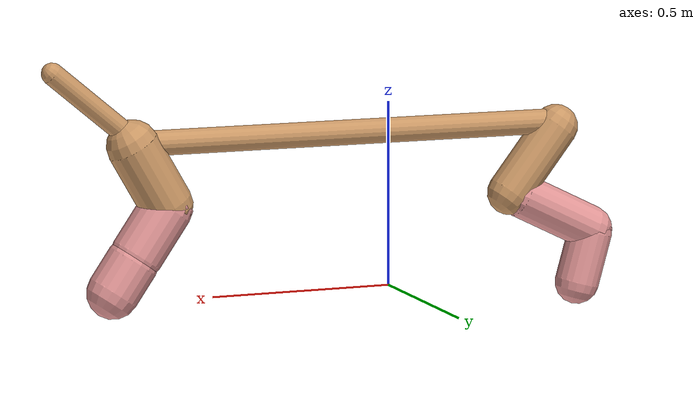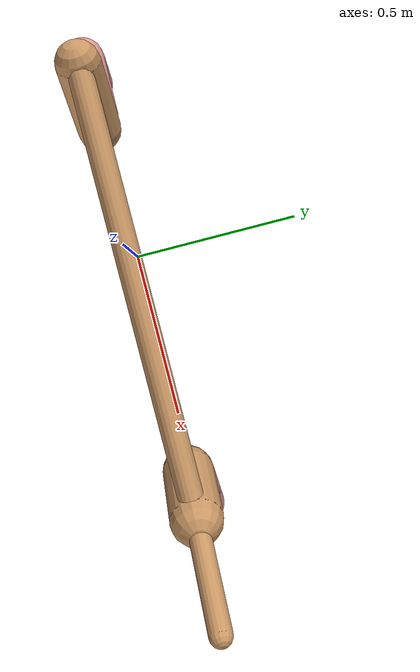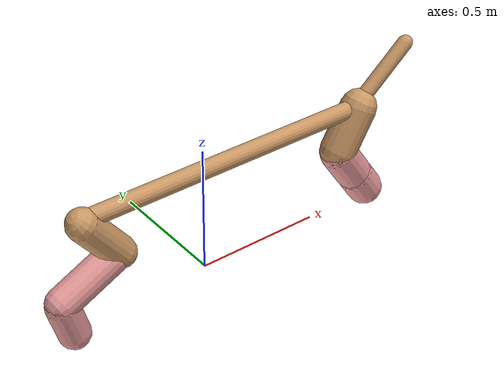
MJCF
<mujoco model="cheetah">
  <compiler angle="radian" coordinate="local" inertiafromgeom="true" settotalmass="14" />
  <default>
    <joint armature=".1" damping=".01" limited="true" solimplimit="0 .8 .03" solreflimit=".02 1" stiffness="8" />
    <geom conaffinity="0" condim="3" contype="1" friction="0.8 .1 .1" rgba="0.8 0.6 .4 1" solimp="0.0 0.8 0.01" solref="0.02 1" />
    <motor ctrllimited="true" ctrlrange="-1 1" />
  </default>
  <size nstack="300000" nuser_geom="1" />
  <option gravity="0 0 -9.81" timestep="0.01" />
  <worldbody>
    <body name="torso" pos="0.0 0.0 0.42282311882029916">
      <joint armature="0" axis="1 0 0" damping="0" limited="false" name="ignorex" pos="0 0 0" stiffness="0" type="slide" />
      <joint armature="0" axis="0 0 1" damping="0" limited="false" name="ignorez" pos="0 0 0" stiffness="0" type="slide" />
      <joint armature="0" axis="0 1 0" damping="0" limited="false" name="ignorey" pos="0 0 0" stiffness="0" type="hinge" />
      <geom fromto="-0.5 0.0 0.0 0.723382535122875 0.0 0.0" name="torso" size="0.03411719035973735" type="capsule" />
      <geom axisangle="0 1 0 .87" name="head" pos="0.8233825351228748 0.0 0.1" size="0.029522080629239472 0.15" type="capsule" />

      <body name="bthigh" pos="-.5 0 0">
        <joint axis="0 1 0" damping="6" name="bthigh" pos="0 0 0" range="-.52 1.05" stiffness="240" type="hinge" />
        <geom axisangle="0 1 0 -3.8" name="bthigh" pos="0.07923333014276872 0.0 -0.10300332918559933" size="0.06063002656234582 0.11094012900757912" type="capsule" />
        <body name="bshin" pos="0.11846666028553743 0.0 -0.19600665837119866">
          <joint axis="0 1 0" damping="4.5" name="bshin" pos="0 0 0" range="-.785 .785" stiffness="180" type="hinge" />
          <geom axisangle="0 1 0 -2.03" name="bshin" pos="-0.10848543992665122 0.0 -0.05424271996332561" rgba="0.9 0.6 0.6 1" size="0.06063002656234582 0.11476565069749564" type="capsule" />
          <body name="bfoot" pos="-0.21697087985330243 0.0 -0.10848543992665122">
            <joint axis="0 1 0" damping="3" name="bfoot" pos="0 0 0" range="-.4 .785" stiffness="120" type="hinge" />
            <geom axisangle="0 1 0 -.27" name="bfoot" pos="0.02347597171986314 0.0 -0.07590564189422416" rgba="0.9 0.6 0.6 1" size="0.06063002656234582 0.07191980777043061" type="capsule" />
            <inertial mass="10" />
          </body>
        </body>
      </body>
      <body name="fthigh" pos="0.7233825351228749 0.0 0.0">
        <joint axis="0 1 0" damping="4.5" name="fthigh" pos="0 0 0" range="-1.5 0.8" stiffness="180" type="hinge" />
        <geom axisangle="0 1 0 .52" name="fthigh" pos="-0.04989554608158897 0.0 -0.0855352218541525" size="0.0707146392858241 0.0931" type="capsule" />
        <body name="fshin" pos="-0.09979109216317794 0.0 -0.171070443708305">
          <joint axis="0 1 0" damping="3" name="fshin" pos="0 0 0" range="-1.2 1.1" stiffness="120" type="hinge" />
          <geom axisangle="0 1 0 -.6" name="fshin" pos="0.046381400387749405 0.0 -0.06422040053688378" rgba="0.9 0.6 0.6 1" size="0.0707146392858241 0.07419999999999999" type="capsule" />
          <body name="ffoot" pos="0.09276280077549881 0.0 -0.12844080107376757">
            <joint axis="0 1 0" damping="1.5" name="ffoot" pos="0 0 0" range="-3.1 -0.3" stiffness="60" type="hinge" />
            <geom axisangle="0 1 0 -.6" name="ffoot" pos="0.033644090582416526 0.0 -0.05233525201709238" rgba="0.9 0.6 0.6 1" size="0.0707146392858241 0.049" type="capsule" />
            <inertial mass="10" />
          </body>
        </body>
      </body>
    </body>
  </worldbody>
  <actuator>
    <motor gear="120" joint="bthigh" name="bthigh" />
    <motor gear="90" joint="bshin" name="bshin" />
    <motor gear="60" joint="bfoot" name="bfoot" />
    <motor gear="120" joint="fthigh" name="fthigh" />
    <motor gear="60" joint="fshin" name="fshin" />
    <motor gear="30" joint="ffoot" name="ffoot" />
  </actuator>
</mujoco>
